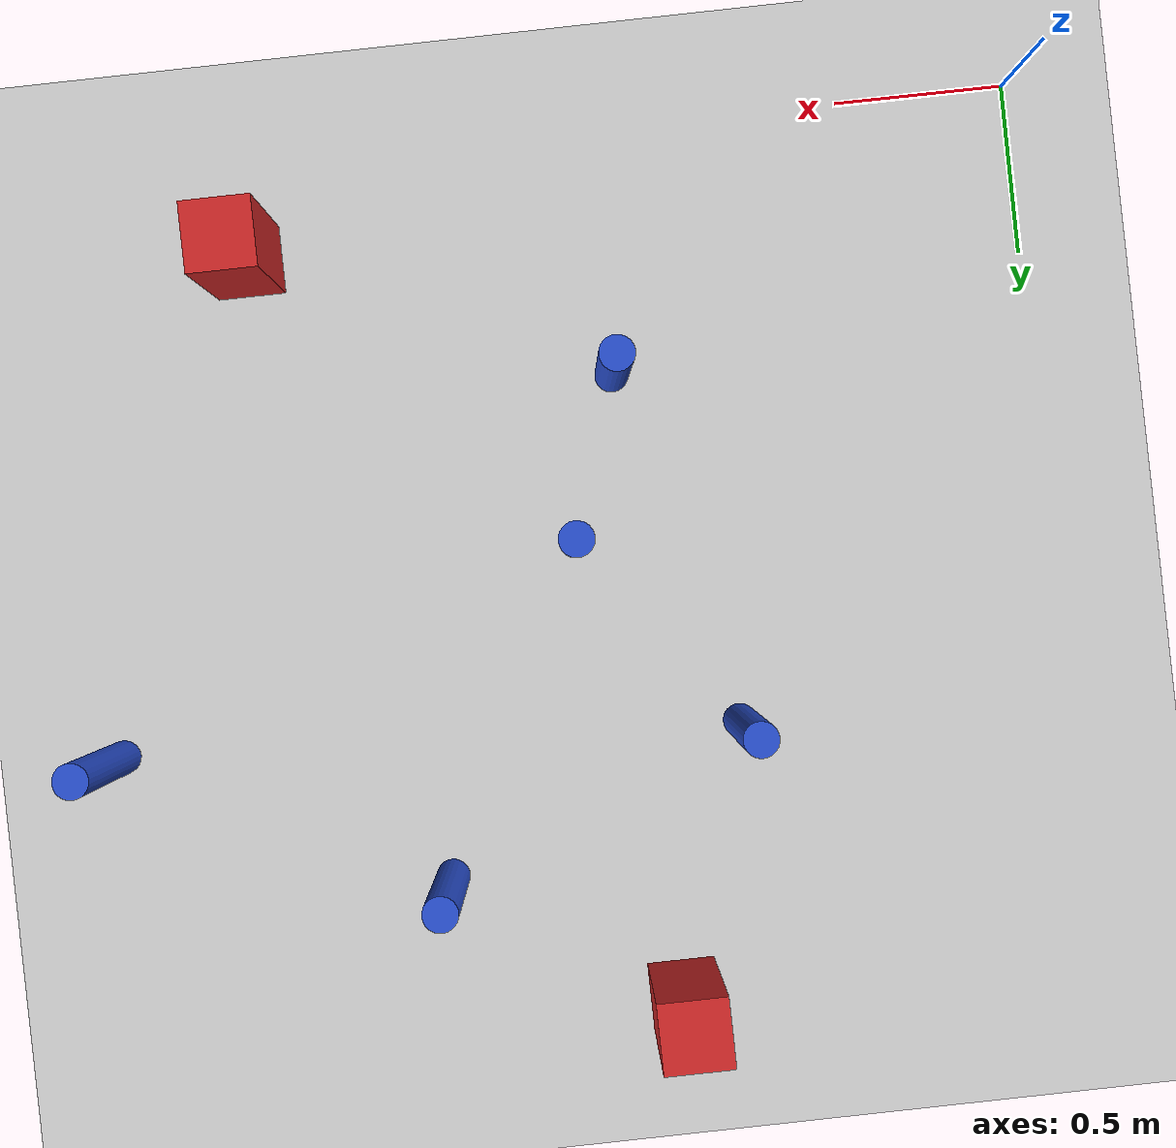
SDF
<sdf version="1.6">
 <world name="default">
  <model name="ground_plane">
   <static>1</static>
   <link name="link">
    <collision name="collision">
     <geometry><plane><normal>0 0 1</normal><size>100 100</size></plane></geometry>
     <surface><friction><ode><mu>100</mu><mu2>50</mu2></ode></friction></surface>
    </collision>
    <visual name="visual">
     <cast_shadows>0</cast_shadows>
     <geometry><plane><normal>0 0 1</normal><size>100 100</size></plane></geometry>
     <material>
      <ambient>1.0 1.0 1.0 1.0</ambient>
      <diffuse>0.8 0.8 0.8 1.0</diffuse>
      <specular>0.01 0.01 0.01 1.000000</specular>
     </material>
    </visual>
   </link>
  </model>
  <model name="pole_obstacle27">
   <static>true</static>
   <pose>1.41497289269 1.21649229469 7.38925637345e-09 -8.471706928e-08 1.24976765079e-08 -1.74513093017e-07</pose>
   <link name="link">
    <pose>0 0 0.3 0 -0 0</pose>
    <inertial>
     <mass>1</mass>
     <inertia><ixx>0.145833</ixx><ixy>0</ixy><ixz>0</ixz><iyy>0.145833</iyy><iyz>0</iyz><izz>0.125</izz></inertia>
    </inertial>
    <collision name="collision">
     <geometry><cylinder><radius>0.05</radius><length>.6</length></cylinder></geometry>
    </collision>
    <visual name="visual">
     <geometry><cylinder><radius>0.05</radius><length>.6</length></cylinder></geometry>
     <material>
      <script><name>Gazebo/Blue</name><uri>file://media/materials/scripts/gazebo.material</uri></script>
     </material>
    </visual>
   </link>
  </model>
  <model name="pole_obstacle60">
   <static>true</static>
   <pose>1.88599101799 2.17365387695 7.38925637345e-09 -8.47170692799e-08 1.24976765053e-08 -1.74513093017e-07</pose>
   <link name="link">
    <pose>0 0 0.3 0 -0 0</pose>
    <inertial>
     <mass>1</mass>
     <inertia><ixx>0.145833</ixx><ixy>0</ixy><ixz>0</ixz><iyy>0.145833</iyy><iyz>0</iyz><izz>0.125</izz></inertia>
    </inertial>
    <collision name="collision">
     <geometry><cylinder><radius>0.05</radius><length>.6</length></cylinder></geometry>
    </collision>
    <visual name="visual">
     <geometry><cylinder><radius>0.05</radius><length>.6</length></cylinder></geometry>
     <material>
      <script><name>Gazebo/Blue</name><uri>file://media/materials/scripts/gazebo.material</uri></script>
     </material>
    </visual>
   </link>
  </model>
  <model name="square_post_obstacle77">
   <static>true</static>
   <pose>1.23754936218 2.59867881142 1.91545236811e-07 -7.35059704564e-06 1.12565212e-07 2.39332434364e-05</pose>
   <link name="link">
    <pose>0 0 0.25 0 -0 0</pose>
    <inertial>
     <mass>100</mass>
     <inertia>
      <ixx>0.166667</ixx>
      <ixy>0</ixy>
      <ixz>0</ixz>
      <iyy>0.166667</iyy>
      <iyz>0</iyz>
      <izz>0.166667</izz>
     </inertia>
    </inertial>
    <collision name="collision"><geometry><box><size>.2 .2 .5</size></box></geometry></collision>
    <visual name="visual">
     <geometry><box><size>.2 .2 .5</size></box></geometry>
     <material>
      <script><name>Gazebo/Red</name><uri>file://media/materials/scripts/gazebo.material</uri></script>
     </material>
    </visual>
   </link>
  </model>
  <model name="pole_obstacle139">
   <static>true</static>
   <pose>2.82898563283 1.71364597867 7.38925637345e-09 -8.471706928e-08 1.24976765152e-08 -1.74513093012e-07</pose>
   <link name="link">
    <pose>0 0 0.3 0 -0 0</pose>
    <inertial>
     <mass>1</mass>
     <inertia><ixx>0.145833</ixx><ixy>0</ixy><ixz>0</ixz><iyy>0.145833</iyy><iyz>0</iyz><izz>0.125</izz></inertia>
    </inertial>
    <collision name="collision">
     <geometry><cylinder><radius>0.05</radius><length>.6</length></cylinder></geometry>
    </collision>
    <visual name="visual">
     <geometry><cylinder><radius>0.05</radius><length>.6</length></cylinder></geometry>
     <material>
      <script><name>Gazebo/Blue</name><uri>file://media/materials/scripts/gazebo.material</uri></script>
     </material>
    </visual>
   </link>
  </model>
  <model name="square_post_obstacle128">
   <static>true</static>
   <pose>2.29668763704 0.281775508919 1.91545236811e-07 -7.35059704564e-06 1.12565212e-07 2.39332434364e-05</pose>
   <link name="link">
    <pose>0 0 0.25 0 -0 0</pose>
    <inertial>
     <mass>100</mass>
     <inertia>
      <ixx>0.166667</ixx>
      <ixy>0</ixy>
      <ixz>0</ixz>
      <iyy>0.166667</iyy>
      <iyz>0</iyz>
      <izz>0.166667</izz>
     </inertia>
    </inertial>
    <collision name="collision"><geometry><box><size>.2 .2 .5</size></box></geometry></collision>
    <visual name="visual">
     <geometry><box><size>.2 .2 .5</size></box></geometry>
     <material>
      <script><name>Gazebo/Red</name><uri>file://media/materials/scripts/gazebo.material</uri></script>
     </material>
    </visual>
   </link>
  </model>
  <model name="pole_obstacle200">
   <static>true</static>
   <pose>0.982928005613 1.80267367981 7.38925637345e-09 -8.47170692798e-08 1.24976764951e-08 -1.74513093022e-07</pose>
   <link name="link">
    <pose>0 0 0.3 0 -0 0</pose>
    <inertial>
     <mass>1</mass>
     <inertia><ixx>0.145833</ixx><ixy>0</ixy><ixz>0</ixz><iyy>0.145833</iyy><iyz>0</iyz><izz>0.125</izz></inertia>
    </inertial>
    <collision name="collision">
     <geometry><cylinder><radius>0.05</radius><length>.6</length></cylinder></geometry>
    </collision>
    <visual name="visual">
     <geometry><cylinder><radius>0.05</radius><length>.6</length></cylinder></geometry>
     <material>
      <script><name>Gazebo/Blue</name><uri>file://media/materials/scripts/gazebo.material</uri></script>
     </material>
    </visual>
   </link>
  </model>
  <model name="pole_obstacle226">
   <static>true</static>
   <pose>1.25365000957 0.734221020781 7.38925637345e-09 -8.47170692799e-08 1.24976765075e-08 -1.74513093017e-07</pose>
   <link name="link">
    <pose>0 0 0.3 0 -0 0</pose>
    <inertial>
     <mass>1</mass>
     <inertia><ixx>0.145833</ixx><ixy>0</ixy><ixz>0</ixz><iyy>0.145833</iyy><iyz>0</iyz><izz>0.125</izz></inertia>
    </inertial>
    <collision name="collision">
     <geometry><cylinder><radius>0.05</radius><length>.6</length></cylinder></geometry>
    </collision>
    <visual name="visual">
     <geometry><cylinder><radius>0.05</radius><length>.6</length></cylinder></geometry>
     <material>
      <script><name>Gazebo/Blue</name><uri>file://media/materials/scripts/gazebo.material</uri></script>
     </material>
    </visual>
   </link>
  </model>
 </world>
</sdf>
